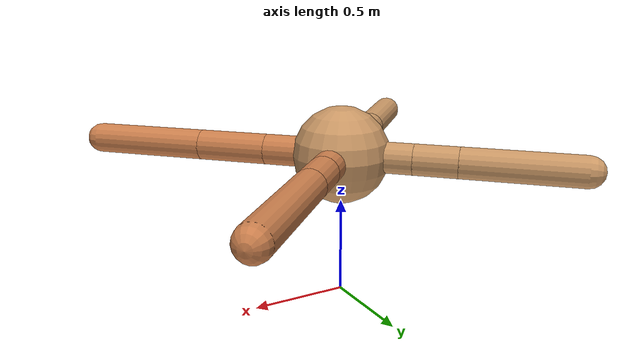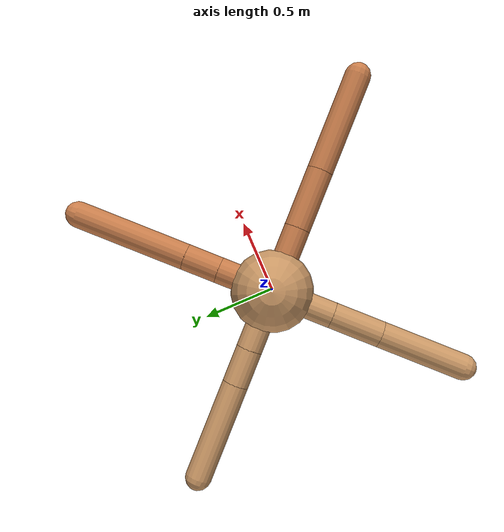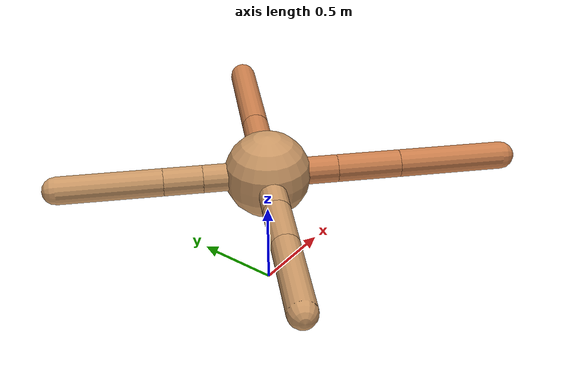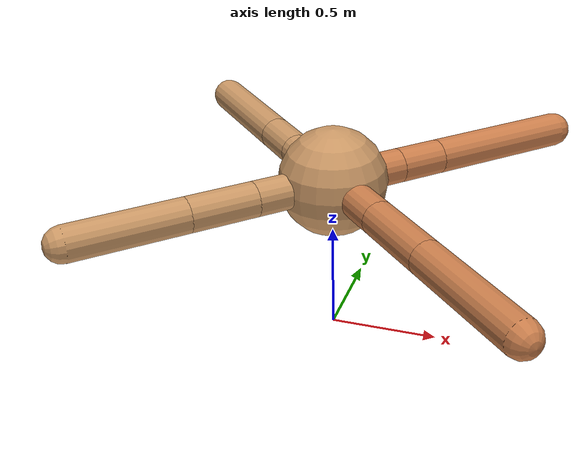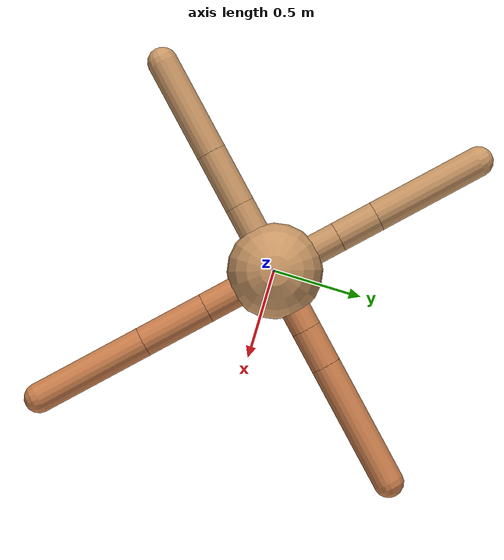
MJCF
<mujoco model="ant">
  <compiler angle="degree" coordinate="local" inertiafromgeom="true" />
  <option integrator="RK4" timestep="0.01" />
  <custom>
    <numeric data="0.0 0.0 0.55 1.0 0.0 0.0 0.0 0.0 1.0 0.0 -1.0 0.0 -1.0 0.0 1.0" name="init_qpos" />
  </custom>
  <default>
    <joint armature="1" damping="1" limited="true" />
    <geom conaffinity="0" condim="3" density="5.0" friction="1.5 0.1 0.1" margin="0.01" rgba="0.8 0.6 0.4 1" />
  </default>
  <worldbody>
    <body name="torso" pos="0 0 0.75">
      <geom name="torso_geom" pos="0 0 0" size="0.25" type="sphere" />

      <body name="front_left_leg" pos="0 0 0">
        <geom fromto="0.0 0.0 0.0 0.24215474202376486 0.24215474202376486 0.0" name="aux_1_geom" size="0.08" type="capsule" rgba=".8 .5 .3 1" />
        <body name="aux_1" pos="0.24215474202376486 0.24215474202376486 0.0">
          <joint axis="0 0 1" name="hip_1" pos="0.0 0.0 0.0" range="-40 40" type="hinge" />
          <geom fromto="0.0 0.0 0.0 0.15184592431122212 0.15184592431122212 0.0" name="left_leg_geom" size="0.08" type="capsule" rgba=".8 .5 .3 1" />
          <body pos="0.15184592431122212 0.15184592431122212 0.0" name="front_left_foot">
            <joint axis="-1 1 0" name="ankle_1" pos="0.0 0.0 0.0" range="30 100" type="hinge" />
            <geom fromto="0.0 0.0 0.0 0.48472453227066287 0.48472453227066287 0.0" name="left_ankle_geom" size="0.08" type="capsule" rgba=".8 .5 .3 1" />
          </body>
        </body>
      </body>
      <body name="front_right_leg" pos="0 0 0">
        <geom fromto="0.0 0.0 0.0 -0.26298962162258505 0.26298962162258505 0.0" name="aux_2_geom" size="0.08" type="capsule" />
        <body name="aux_2" pos="-0.26298962162258505 0.26298962162258505 0.0">
          <joint axis="0 0 1" name="hip_2" pos="0.0 0.0 0.0" range="-40 40" type="hinge" />
          <geom fromto="0.0 0.0 0.0 -0.1587950798739045 0.1587950798739045 0.0" name="right_leg_geom" size="0.08" type="capsule" />
          <body pos="-0.1587950798739045 0.1587950798739045 0.0" name="front_right_foot">
            <joint axis="1 1 0" name="ankle_2" pos="0.0 0.0 0.0" range="-100 -30" type="hinge" />
            <geom fromto="0.0 0.0 0.0 -0.423144077450019 0.423144077450019 0.0" name="right_ankle_geom" size="0.08" type="capsule" />
          </body>
        </body>
      </body>
      <body name="left_back_leg" pos="0 0 0">
        <geom fromto="0.0 0.0 0.0 -0.2730586383235865 -0.2730586383235865 0.0" name="aux_3_geom" size="0.08" type="capsule" />
        <body name="aux_3" pos="-0.2730586383235865 -0.2730586383235865 0.0">
          <joint axis="0 0 1" name="hip_3" pos="0.0 0.0 0.0" range="-40 40" type="hinge" />
          <geom fromto="0.0 0.0 0.0 -0.21921884744742326 -0.21921884744742326 0.0" name="back_leg_geom" size="0.08" type="capsule" />
          <body pos="-0.21921884744742326 -0.21921884744742326 0.0" name="left_back_foot">
            <joint axis="-1 1 0" name="ankle_3" pos="0.0 0.0 0.0" range="-100 -30" type="hinge" />
            <geom fromto="0.0 0.0 0.0 -0.3750433850035892 -0.3750433850035892 0.0" name="third_ankle_geom" size="0.08" type="capsule" />
          </body>
        </body>
      </body>
      <body name="right_back_leg" pos="0 0 0">
        <geom fromto="0.0 0.0 0.0 0.28613656098471735 -0.28613656098471735 0.0" name="aux_4_geom" size="0.08" type="capsule" rgba=".8 .5 .3 1" />
        <body name="aux_4" pos="0.28613656098471735 -0.28613656098471735 0.0">
          <joint axis="0 0 1" name="hip_4" pos="0.0 0.0 0.0" range="-40 40" type="hinge" />
          <geom fromto="0.0 0.0 0.0 0.26055735170905037 -0.26055735170905037 0.0" name="rightback_leg_geom" size="0.08" type="capsule" rgba=".8 .5 .3 1" />
          <body pos="0.26055735170905037 -0.26055735170905037 0.0" name="right_back_foot">
            <joint axis="1 1 0" name="ankle_4" pos="0.0 0.0 0.0" range="30 100" type="hinge" />
            <geom fromto="0.0 0.0 0.0 0.432964544609117 -0.432964544609117 0.0" name="fourth_ankle_geom" size="0.08" type="capsule" rgba=".8 .5 .3 1" />
          </body>
        </body>
      </body>
    </body>
  </worldbody>
  <actuator>
    <motor ctrllimited="true" ctrlrange="-1.0 1.0" joint="hip_4" gear="150" />
    <motor ctrllimited="true" ctrlrange="-1.0 1.0" joint="ankle_4" gear="150" />
    <motor ctrllimited="true" ctrlrange="-1.0 1.0" joint="hip_1" gear="150" />
    <motor ctrllimited="true" ctrlrange="-1.0 1.0" joint="ankle_1" gear="150" />
    <motor ctrllimited="true" ctrlrange="-1.0 1.0" joint="hip_2" gear="150" />
    <motor ctrllimited="true" ctrlrange="-1.0 1.0" joint="ankle_2" gear="150" />
    <motor ctrllimited="true" ctrlrange="-1.0 1.0" joint="hip_3" gear="150" />
    <motor ctrllimited="true" ctrlrange="-1.0 1.0" joint="ankle_3" gear="150" />
  </actuator>
</mujoco>
